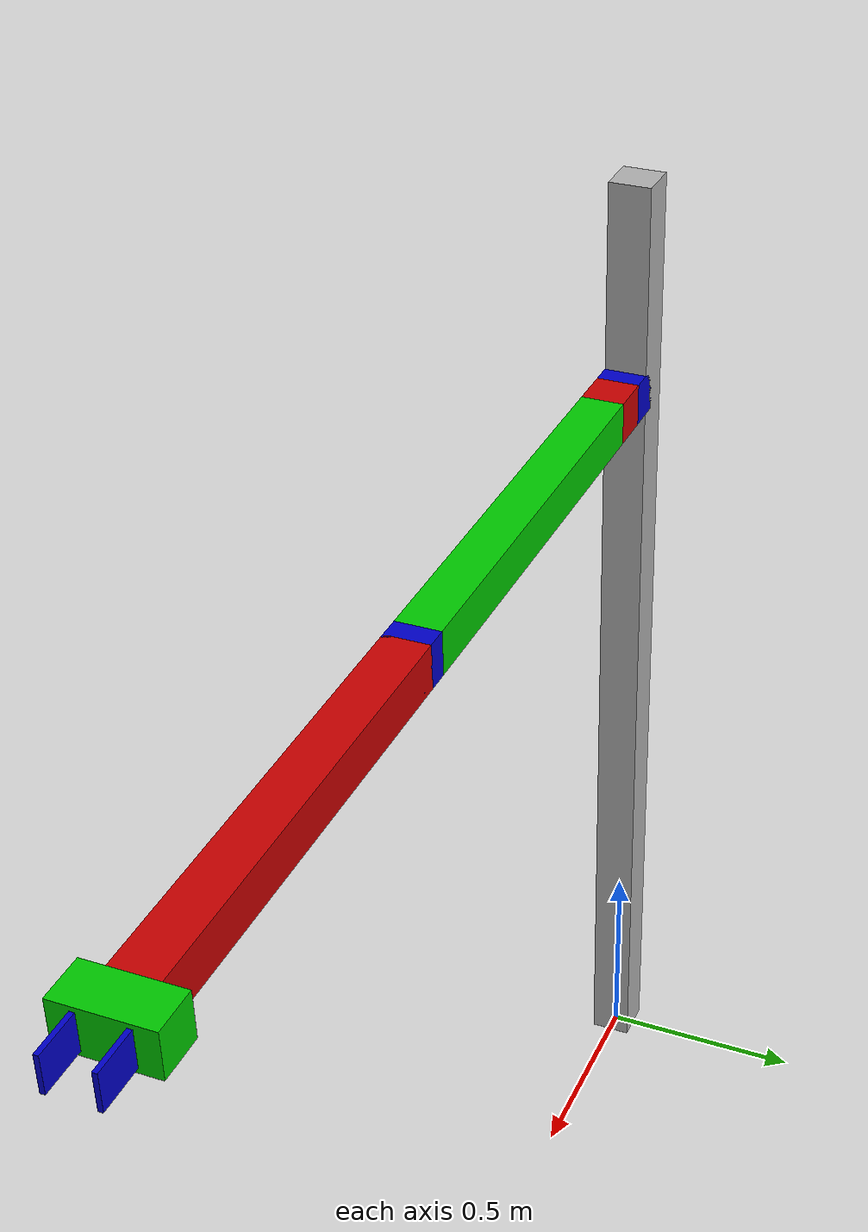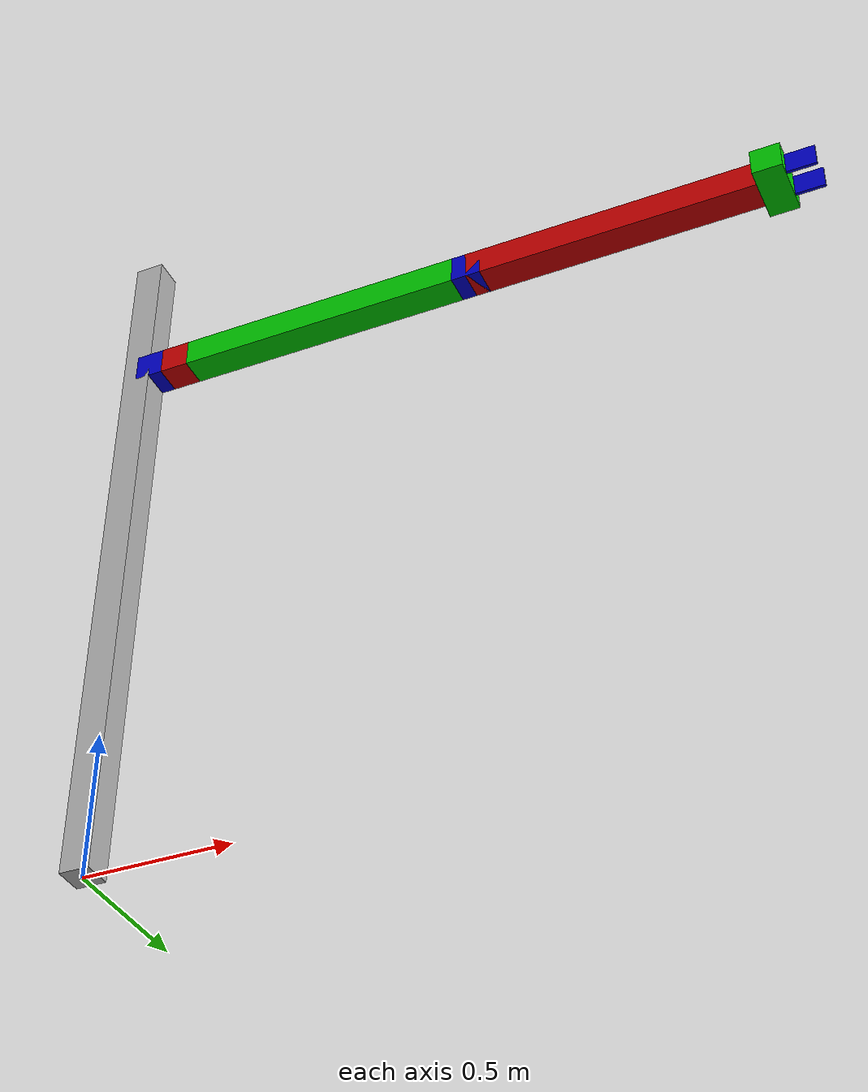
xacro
<?xml version="1.0"?>
<robot xmlns:xacro="http://www.ros.org/wiki/xacro" name="minimal_arm">

    <link name="world"/>
  <joint name="base_joint" type="fixed">
    <parent link="world"/>
    <child link="base_link"/>
    <origin xyz="0 0 0" rpy="0 0 0"/>
  </joint>

  <!-- Base Link -->
  <link name="base_link">
    <visual>
      <origin xyz="0.0 0.0 1.25" rpy="0 0 0"/>
      <geometry><box size="0.1 0.1 2.5"/></geometry>
      <material name="Grey"><color rgba="0.7 0.7 0.7 1.0"/></material>
    </visual>
    <collision>
      <origin xyz="0.0 0.0 1.25" rpy="0 0 0"/>
      <geometry><box size="0.1 0.1 2.5"/></geometry>
    </collision>
    <inertial>
      <mass value="0.1"/>
      <inertia ixx="0.001" ixy="0.0" ixz="0.0" iyy="0.001" iyz="0.0" izz="0.001"/>
    </inertial>
  </link>

  <!-- Arm Joints and Links (6 DOF) -->
  <!-- Joint 1 -->
  <joint name="joint1" type="revolute">
    <parent link="base_link"/>
    <child link="link1"/>
    <origin xyz="0 0 2" rpy="0 0 0"/>
    <axis xyz="1 0 0"/>
    <limit lower="-3.14" upper="3.14" effort="100" velocity="0.5"/>
  </joint>
  <link name="link1">
    <visual>
      <origin xyz="0.05 0.0 0.0" rpy="0 0 0"/>
      <geometry><box size="0.1 0.1 0.1"/></geometry>
      <material name="Blue"><color rgba="0.0 0.0 0.8 1.0"/></material>
    </visual>
    <collision>
      <origin xyz="0.05 0.0 0.0" rpy="0 0 0"/>
      <geometry><box size="0.1 0.1 0.1"/></geometry>
    </collision>
    <inertial>
      <mass value="0.05"/>
      <inertia ixx="0.0001" ixy="0.0" ixz="0.0" iyy="0.0001" iyz="0.0" izz="0.0001"/>
    </inertial>
  </link>

  <!-- Joint 2 -->
  <joint name="joint2" type="revolute">
    <parent link="link1"/>
    <child link="link2"/>
    <origin xyz="0.1 0.0 0.0" rpy="0 0 0"/> <!-- Rotate to align axis -->
    <axis xyz="0 1 0"/>
    <limit lower="-1.57" upper="1.57" effort="100" velocity="0.5"/>
  </joint>
  <link name="link2">
    <visual>
      <origin xyz="0.05 0.0 0.0" rpy="0 0 0"/>
      <geometry><box size="0.1 0.1 0.1"/></geometry>
      <material name="Red"><color rgba="0.8 0.0 0.0 1.0"/></material>
    </visual>
    <collision>
      <origin xyz="0.05 0.0 0.0" rpy="0 0 0"/>
      <geometry><box size="0.1 0.1 0.1"/></geometry>
    </collision>
    <inertial>
      <mass value="0.05"/>
      <inertia ixx="0.0001" ixy="0.0" ixz="0.0" iyy="0.0001" iyz="0.0" izz="0.0001"/>
    </inertial>
  </link>

  <!-- Joint 3 -->
  <joint name="joint3" type="revolute">
    <parent link="link2"/>
    <child link="link3"/>
    <origin xyz="0.1 0.0 0.0" rpy="0 0 0"/> <!-- Rotate to align axis -->
    <axis xyz="1 0 0"/>
    <limit lower="-1.57" upper="1.57" effort="100" velocity="0.5"/>
  </joint>
  <link name="link3">
    <visual>
      <origin xyz="0.5 0.0 0.0" rpy="0 0 0"/>
      <geometry><box size="1 0.1 0.1"/></geometry>
      <material name="Green"><color rgba="0.0 0.8 0.0 1.0"/></material>
    </visual>
    <collision>
      <origin xyz="0.5 0.0 0.0" rpy="0 0 0"/>
      <geometry><box size="1 0.1 0.1"/></geometry>
    </collision>
    <inertial>
      <mass value="0.05"/>
      <inertia ixx="0.0001" ixy="0.0" ixz="0.0" iyy="0.0001" iyz="0.0" izz="0.0001"/>
    </inertial>
  </link>

  <!-- Joint 4 -->
  <joint name="joint4" type="revolute">
    <parent link="link3"/>
    <child link="link4"/>
    <origin xyz="1 0.0 0.0" rpy="0 0 0"/> <!-- Rotate to align axis -->
    <axis xyz="0 0 1"/>
    <limit lower="0" upper="3.14" effort="100" velocity="0.5"/>
  </joint>
  <link name="link4">
    <visual>
      <origin xyz="0.05 0.0 0.0" rpy="0 0 0"/>
      <geometry><box size="0.1 0.1 0.1"/></geometry>
      <material name="Blue"><color rgba="0.0 0.0 0.8 1.0"/></material>
    </visual>
    <collision>
      <origin xyz="0.05 0.0 0.0" rpy="0 0 0"/>
      <geometry><box size="0.1 0.1 0.1"/></geometry>
    </collision>
    <inertial>
      <mass value="0.05"/>
      <inertia ixx="0.0001" ixy="0.0" ixz="0.0" iyy="0.0001" iyz="0.0" izz="0.0001"/>
    </inertial>
  </link>

  <!-- Joint 5 -->
  <joint name="joint5" type="revolute">
    <parent link="link4"/>
    <child link="link5"/>
    <origin xyz="0.05 0.0 0.0" rpy="0 0 0"/> <!-- Rotate to align axis -->
    <axis xyz="1 0 0"/>
    <limit lower="-1.57" upper="1.57" effort="100" velocity="0.5"/>
  </joint>
  <link name="link5">
    <visual>
      <origin xyz="0.5 0.0 0.0" rpy="0 0 0"/>
      <geometry><box size="1 0.1 0.1"/></geometry>
      <material name="Red"><color rgba="0.8 0.0 0.0 1.0"/></material>
    </visual>
    <collision>
      <origin xyz="0.5 0.0 0.0" rpy="0 0 0"/>
      <geometry><box size="1 0.1 0.1"/></geometry>
    </collision>
    <inertial>
      <mass value="0.05"/>
      <inertia ixx="0.0001" ixy="0.0" ixz="0.0" iyy="0.0001" iyz="0.0" izz="0.0001"/>
    </inertial>
  </link>

  <!-- Joint 6 -->
  <joint name="joint6" type="revolute">
    <parent link="link5"/>
    <child link="link6"/>
    <origin xyz="1 0.0 0.0" rpy="0 0 0"/> <!-- Rotate to align axis -->
    <axis xyz="0 1 0"/>
    <limit lower="-1.57" upper="1.57" effort="100" velocity="0.5"/>
  </joint>
  <link name="link6">
    <visual>
      <origin xyz="0.05 0.0 0.0" rpy="0 0 0"/>
      <geometry><box size="0.1 0.2 0.1"/></geometry>
      <material name="Green"><color rgba="0.0 0.8 0.0 1.0"/></material>
    </visual>
    <collision>
      <origin xyz="0.05 0.0 0.0" rpy="0 0 0"/>
      <geometry><box size="0.1 0.2 0.1"/></geometry>
    </collision>
    <inertial>
      <mass value="0.05"/>
      <inertia ixx="0.0001" ixy="0.0" ixz="0.0" iyy="0.0001" iyz="0.0" izz="0.0001"/>
    </inertial>
  </link>

  <!-- Gripper Joint 1 -->
  <joint name="Gripper_joint1" type="prismatic">
    <parent link="link6"/>
    <child link="gripper_finger_l"/>
    <origin xyz="0.1 0.0 0.0" rpy="0 0 0"/> <!-- Rotate to align axis -->
    <axis xyz="0 1 0"/>
    <limit lower="0.01" upper="0.09" effort="10" velocity="0.1"/>
  </joint>
  <link name="gripper_finger_l">
    <visual>
      <origin xyz="0.05 0.0 0.0" rpy="0 0 0"/>
      <geometry><box size="0.1 0.01 0.08"/></geometry>
      <material name="Blue"><color rgba="0.0 0.0 0.8 1.0"/></material>
    </visual>
    <collision>
      <origin xyz="0.05 0.0 0.0" rpy="0 0 0"/>
      <geometry><box size="0.1 0.01 0.08"/></geometry>
    </collision>
    <inertial>
      <mass value="0.05"/>
      <inertia ixx="0.0001" ixy="0.0" ixz="0.0" iyy="0.0001" iyz="0.0" izz="0.0001"/>
    </inertial>
  </link>

  <!-- Gripper Joint 2 -->
  <joint name="Gripper_joint2" type="prismatic">
    <parent link="link6"/>
    <child link="gripper_finger_r"/>
    <origin xyz="0.1 0.0 0.0" rpy="0 0 0"/> <!-- Rotate to align axis -->
    <axis xyz="0 -1 0"/>
    <limit lower="0.01" upper="0.09" effort="10" velocity="0.1"/>
  </joint>
  <link name="gripper_finger_r">
    <visual>
      <origin xyz="0.05 0.0 0.0" rpy="0 0 0"/>
      <geometry><box size="0.1 0.01 0.08"/></geometry>
      <material name="Blue"><color rgba="0.0 0.0 0.8 1.0"/></material>
    </visual>
    <collision>
      <origin xyz="0.05 0.0 0.0" rpy="0 0 0"/>
      <geometry><box size="0.1 0.01 0.08"/></geometry>
    </collision>
    <inertial>
      <mass value="0.05"/>
      <inertia ixx="0.0001" ixy="0.0" ixz="0.0" iyy="0.0001" iyz="0.0" izz="0.0001"/>
    </inertial>
  </link>

</robot>
